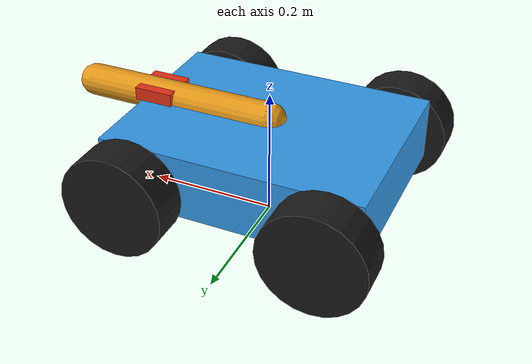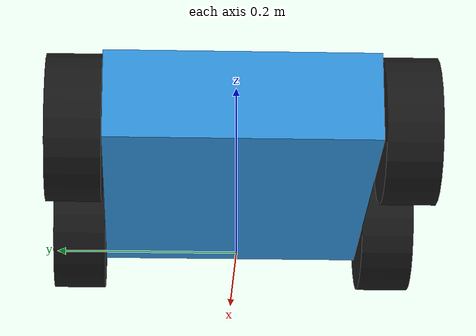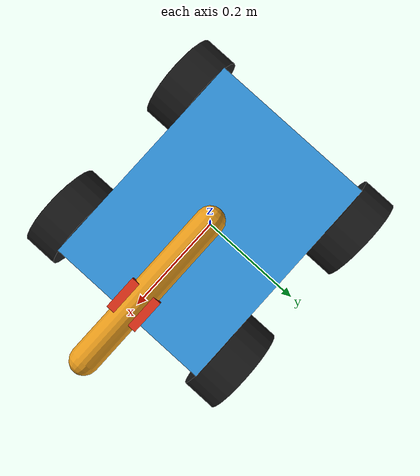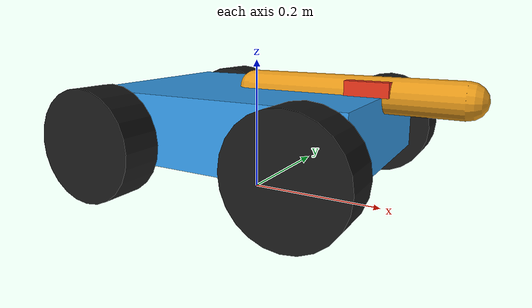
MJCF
<mujoco model="mobile_base">
  <worldbody>
    <body name="base_link" pos="0 0 0.11">
      <freejoint name="floating_base_joint"/>
      <inertial pos="0 0 0" mass="20.0" diaginertia="0.1667 0.2833 0.4167"/>
      <!-- Chassis: doesn't touch the ground (the wheels below reach lower and take the floor
           contact instead), but still collides normally with the wall obstacle. -->
      <geom name="chassis" type="box" size="0.2 0.15 0.05" rgba="0.2 0.6 0.9 1"/>
      <!-- Forward-direction marker (cosmetic only, no collision) -->
      <geom name="heading_marker" type="box" size="0.03 0.03 0.01" pos="0.18 0 0.06" rgba="0.9 0.2 0.1 1"
            contype="0" conaffinity="0"/>
      <geom name="wheel_fl" type="cylinder" size="0.08 0.03" pos="0.15 0.18 -0.02" quat="0.7071068 0.7071068 0 0"
            rgba="0.1 0.1 0.1 1" friction="0 0 0"/>
      <geom name="wheel_fr" type="cylinder" size="0.08 0.03" pos="0.15 -0.18 -0.02" quat="0.7071068 0.7071068 0 0"
            rgba="0.1 0.1 0.1 1" friction="0 0 0"/>
      <geom name="wheel_rl" type="cylinder" size="0.08 0.03" pos="-0.15 0.18 -0.02" quat="0.7071068 0.7071068 0 0"
            rgba="0.1 0.1 0.1 1" friction="0 0 0"/>
      <geom name="wheel_rr" type="cylinder" size="0.08 0.03" pos="-0.15 -0.18 -0.02" quat="0.7071068 0.7071068 0 0"
            rgba="0.1 0.1 0.1 1" friction="0 0 0"/>
      <body name="arm_link" pos="0 0 0.05">
        <joint name="arm_joint" type="hinge" axis="0 1 0" pos="0 0 0" range="-0.7 0.7" limited="true"/>
        <inertial pos="0.15 0 0" mass="2.0" diaginertia="0.001 0.02 0.02"/>
        <geom name="arm_geom" type="capsule" fromto="0 0 0 0.3 0 0" size="0.025" rgba="0.9 0.6 0.1 1"/>
      </body>
    </body>
  </worldbody>
  <actuator>
    <position name="arm_joint" joint="arm_joint" kp="200" ctrlrange="-0.7 0.7"/>
  </actuator>
</mujoco>
